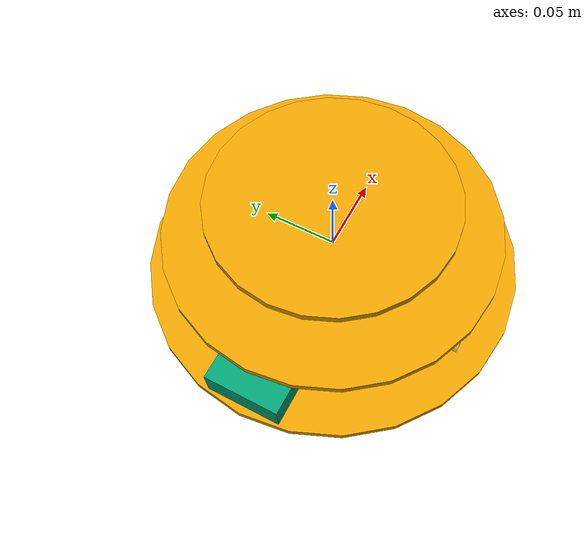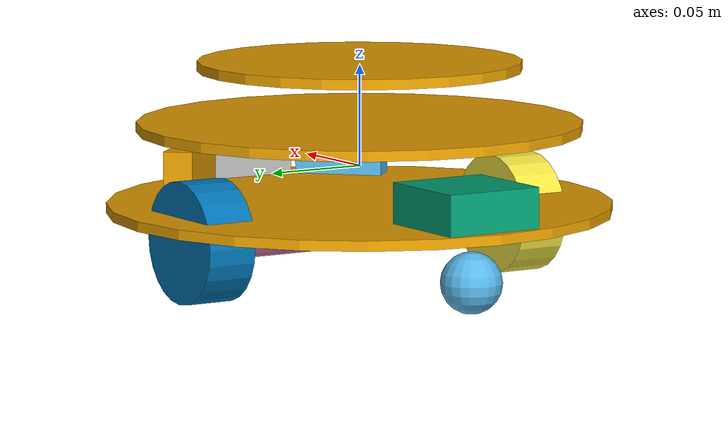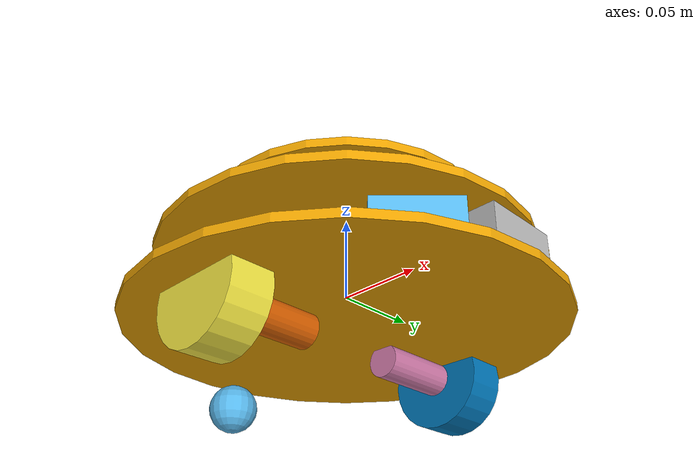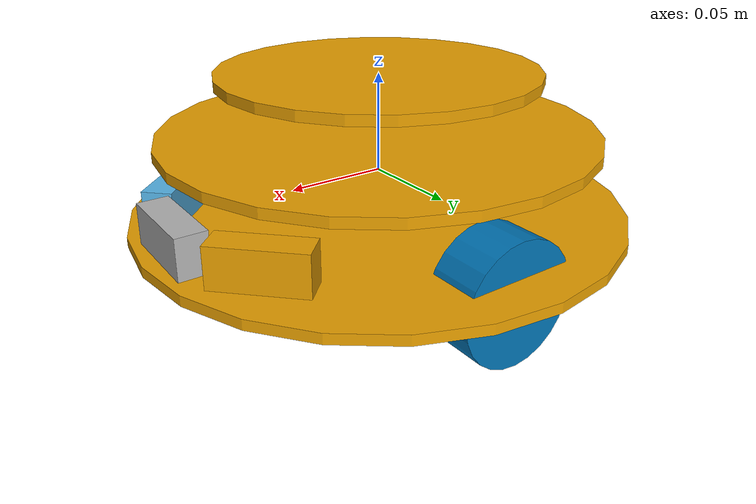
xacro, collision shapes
<?xml version="1.0" ?>

<robot name="r4e" xmlns:xacro="https://www.ros.org/wiki/xacro" >

  <xacro:include filename="$(find r4e_description)/urdf/materials.xacro" />
  <xacro:include filename="$(find r4e_description)/urdf/gazebo.xacro" />
  <xacro:include filename="$(find r4e_description)/urdf/macro.xacro" />

  <!-- Defining link chassis -->
  <link name="link_chassis">
    <!-- pose and inertial -->
    <pose>0 0 0.06 0 0 0</pose>

    <!-- Inertial properties -->
    <inertial>
      <mass value="0.5"/>
      <origin rpy="0 0 0" xyz="0 0 0"/>
      <xacro:cylinder_inertia mass="0.3" r="0.125" l="0.005" />
    </inertial>
    <!-- Collision properties -->
    <collision name="collision_chassis1">
      <origin rpy="0 0 0" xyz="0 0 -0.02"/>
      <geometry>
       <cylinder length="0.005" radius="0.125"/>
      </geometry>
    </collision>
    <!-- Visual properties -->
    <visual name="viasual_chassis1">
      <origin rpy="0 0 0" xyz="0 0 -0.02"/>
      <geometry>
        <mesh filename= "package://r4e_description/meshes/body_robot.dae/body.dae" scale ="1 1 1"/>
      </geometry>
    </visual>
    <collision name="collision_chassis2">
      <origin rpy="0 0 0" xyz="0 0 0.02"/>
      <geometry>
       <cylinder length="0.005" radius="0.11"/>
      </geometry>
    </collision>
    <collision name="collision_chassis3">
      <origin rpy="0 0 0" xyz="0 0 0.05"/>
      <geometry>
       <cylinder length="0.005" radius="0.08"/>
      </geometry>
    </collision>

  </link>

<link name="link_roller_ball">
    <pose> 0 0 0 0 0 0</pose>
    <inertial>
      <mass value="0.05"/>
      <origin rpy="0 0 0" xyz="0 0 0"/>
      <xacro:sphere_inertia mass="0.05" r="0.015"/>
    </inertial>
    <collision name="roller_ball_collision">
      <origin rpy=" 0 0 0" xyz="0 0 0"/>
      <geometry>
        <sphere radius="0.015"/>
      </geometry>
      <surface>
        <friction>
          <ode>
            <mu>0</mu>
            <mu2>0</mu2>
            <slip1>1.0</slip1>
            <slip2>1.0</slip2>
          </ode>
        </friction>
      </surface>
    </collision>
    <visual name="roller_ball_visual">
      <origin rpy=" 0 0 0" xyz="0.015 0 -0.005"/>
      <geometry>
        <mesh filename="package://r4e_description/meshes/roller.dae/roller.dae" scale="1 1 1"/>
      </geometry>
    </visual>
</link>

<!-- joint_roller center-->
   <joint name="joint_roller_ball" type="fixed">
       <origin rpy="0 0 0" xyz="-0.1 0 -0.044"/>
       <child link="link_roller_ball" />
       <parent link="link_chassis" />
    </joint>

<!--pin-->
  <link name="link_pin">
    <pose> 0 0 0 0 0 0</pose>
    <inertial>
      <mass value="0.6"/>
      <origin rpy="0 0 0" xyz="0 0 0"/>
     <xacro:box_inertia mass="0.6" w="0.05"  d="0.05" h="0.02"/>
    </inertial>
    <collision name="pin_collision">
      <origin rpy=" 0 0 0" xyz="0 0 0"/>
      <geometry>
        <box size="0.05 0.05 0.02"/>
      </geometry>
    </collision>
    <visual name="pin_visual">
      <origin rpy=" 0 0 0" xyz="0 0 0"/>
      <geometry>
        <box size="0.05 0.05 0.02"/>
      </geometry>
    </visual>
  </link>

<!-- joint_pin -->
   <joint name="joint_pin" type="fixed">
       <origin rpy="0 0 0" xyz="-0.095 0 -0.0075"/>
       <child link="link_pin" />
       <parent link="link_chassis" />
    </joint>

  <!--
    Adding driver (motors & wheels) to the robot
  -->
  <xacro:link_wheel name="link_right_wheel" />
  <xacro:link_wheel name="link_left_wheel" />
  <xacro:link_motor name="link_right_motor"/>
  <xacro:link_motor name="link_left_motor" />

  <xacro:joint_wheel name="joint_right_wheel"  child="link_right_wheel" parent="link_chassis"  origin_xyz="0 -0.09 -0.03"  />
  <xacro:joint_wheel name="joint_left_wheel"   child="link_left_wheel" parent="link_chassis"  origin_xyz="0 0.09 -0.03"  />
  <xacro:joint_motor name="joint_right_motor" child="link_right_motor" origin_xyz="0 -0.06 -0.03" />
  <xacro:joint_motor name="joint_left_motor" child="link_left_motor" origin_xyz="0 0.06 -0.03" />
  <!--
    Adding laser scan sensors to the robot
  -->
  <xacro:link_sonar name="link_sonar_center" />
  <xacro:link_sonar name="link_sonar_left" />
  <xacro:link_sonar name="link_sonar_right" />
  <!-- Joint sensor -->
  <xacro:joint_sonar name="joint_sonar_center" child="link_sonar_center" origin_rpy="0 0 0" origin_xyz="0.11 0 -0.0075" />
  <xacro:joint_sonar name="joint_sonar_left" child="link_sonar_left" origin_rpy="0 0 0.785398" origin_xyz="0.09 0.045 -0.0075" />
  <xacro:joint_sonar name="joint_sonar_right" child="link_sonar_right" origin_rpy="0 0 -0.785398" origin_xyz="0.09 -0.045 -0.0075" />

</robot>

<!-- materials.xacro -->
<!--
  We are splitting the xacro file into smaller files
-->
<robot name="r4e" xmlns:xacro="https://www.ros.org/wiki/xacro" >
  <!-- Define used colors -->
  <material name="black">
    <color rgba="0.0 0.0 0.0 1.0"/>
  </material>
  <material name="blue">
    <color rgba="0.203125 0.23828125 0.28515625 1.0"/>
  </material>
  <material name="green">
    <color rgba="0.0 0.8 0.0 1.0"/>
  </material>
  <material name="grey">
    <color rgba="0.2 0.2 0.2 1.0"/>
  </material>
  <material name="orange">
    <color rgba="1.0 0.423529411765 0.0392156862745 1.0"/>
  </material>
  <material name="brown">
    <color rgba="0.870588235294 0.811764705882 0.764705882353 1.0"/>
  </material>
  <material name="red">
    <color rgba="0.80078125 0.12890625 0.1328125 1.0"/>
  </material>
  <material name="white">
    <color rgba="1.0 1.0 1.0 1.0"/>
  </material>
</robot>

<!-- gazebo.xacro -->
<robot name="r4e" xmlns:xacro="https://www.ros.org/wiki/xacro" >
  <xacro:include filename="$(find r4e_description)/urdf/macro.xacro" />
  <!--
    Now we are ready to add control to our robot. We will add a new element called plugin to our xacro file. We will add a differential drive plugin to our robot. The new tag looks like follows:
  -->
  <gazebo>
    <plugin filename="libgazebo_ros_diff_drive.so" name="differential_drive_controller">
      <alwaysOn>true</alwaysOn>
      <updateRate>20</updateRate>
      <leftJoint>joint_left_wheel</leftJoint>
      <rightJoint>joint_right_wheel</rightJoint>
      <wheelSeparation>0.17</wheelSeparation>
      <wheelDiameter>0.06</wheelDiameter>
      <torque>0.1</torque>
      <commandTopic>cmd_vel</commandTopic>
      <odometryTopic>odom</odometryTopic>
      <odometryFrame>odom</odometryFrame>
      <robotBaseFrame>link_chassis</robotBaseFrame>
    </plugin>
  </gazebo>
  <xacro:plugin_sonar name_link="link_sonar_center" />
  <xacro:plugin_sonar name_link="link_sonar_left" />
  <xacro:plugin_sonar name_link="link_sonar_right" />

</robot>

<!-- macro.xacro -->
<!--
  we will use macros, which are like functions, to reduce the remaining code in r4e.xacro file.
-->
<robot xmlns:xacro="http://www.ros.org/wiki/xacro">
    <xacro:macro name="link_wheel" params="name">
        <link name="${name}">
            <inertial>
              <mass value="0.2"/>
              <origin rpy="0 1.5707 1.5707" xyz="0 0 0"/>
              <xacro:cylinder_inertia mass="0.2" r="0.03" l="0.025" />
            </inertial>
            <collision name="${name}_collision">
              <origin rpy="0 1.5707 1.5707" xyz="0 0 0"/>
              <geometry>
                <cylinder length="0.025" radius="0.03"/>
              </geometry>
            </collision>
            <visual name="${name}_visual">
              <origin rpy="0 1.5707 1.5707" xyz="0 0 0"/>
              <geometry>
                <mesh filename="package://r4e_description/meshes/wheel_.dae" scale="1 1 1"/>
              </geometry>
            </visual>
        </link>
    </xacro:macro>
    <!-- Motor-->
    <xacro:macro name="link_motor" params="name">
        <link name="${name}">.005
          <inertial>.005
            <mass value="0.3"/>.005
            <origin rpy="0 1.5707 1.5707" xyz="0 0 0"/>
            <xacro:cylinder_inertia mass="0.3" r="0.01" l="0.06" />
          </inertial>
          <collision name="${name}_collision">
            <origin rpy="0 1.5707 1.5707" xyz="0 0 0"/>
            <geometry>
                <cylinder length="0.06" radius="0.01"/>
            </geometry>
          </collision>
          <visual name="${name}_visual">
            <origin rpy="0 1.5707 1.5707" xyz="0 0 0"/>
            <geometry>
              <cylinder length="0.06" radius="0.01"/>
            </geometry>
          </visual>
        </link>
    </xacro:macro>
    <!-- joint link wheels-->
     <xacro:macro name="joint_wheel" params="name child parent origin_xyz">
      <joint name="${name}" type="continuous">
        <origin rpy="0 0 0" xyz="${origin_xyz}"/>
        <child link="${child}"/>
        <parent link="${parent}"/>
        <axis rpy="0 0 0" xyz="0 1 0"/>
        <limit effort="100" velocity="100"/>
        <joint_properties damping="0.5" friction="0.5"/>
      </joint>
    </xacro:macro>
<!-- joint link Motor-->
   <xacro:macro name="joint_motor" params="name child origin_xyz">
      <joint name="${name}" type="fixed">
        <origin rpy="0 0 0" xyz="${origin_xyz}"/>
        <child link="${child}"/>
        <parent link="link_chassis"/>
      </joint>
    </xacro:macro>

 <!-- inertia of the cylinder  -->
    <xacro:macro name="cylinder_inertia" params="mass r l">
      <inertia ixx="${mass*(3*r*r+l*l)/12}" ixy = "0" ixz = "0" iyy="${mass*(3*r*r+l*l)/12}" iyz = "0" izz="${mass*(r*r)/2}" /> <!--izz="${mass*(r*r)/2}" -->
    </xacro:macro>
<!-- inertia of sphere-->
    <xacro:macro name="sphere_inertia" params="mass r">
      <inertia ixx="${(2*mass*r*r)/5}" ixy = "0" ixz = "0" iyy="${(2*mass*r*r)/5}" iyz = "0" izz="${(2*mass*r*r)/5}" /> <!--izz="${-(2*mass*r*r)/3}"-->
    </xacro:macro>
<!--inertia of box-->
    <xacro:macro name="box_inertia" params="mass w d h">

      <inertia ixx="${mass*(h*h+w*w)/12}" ixy = "0" ixz = "0" iyy="${mass*(h*h+d*d)/12}" iyz = "0" izz="${mass*(w*w+d*d)/12}" /> <!--izz="${-mass*(h*h+w*w)/12}"-->
    </xacro:macro>
<!-- Link sensor -->
    <xacro:macro name="link_sonar" params="name">
        <link name="${name}">
          <collision name="${name}_collision">
            <origin rpy="0 0 0" xyz="0 0 0"/>
            <geometry>
              <box size="0.015 0.045 0.02"/>
            </geometry>
          </collision>
          <visual name="${name}_visual">
            <origin rpy="0 0 0" xyz="0 0 0"/>
            <geometry>
              <mesh filename="package://r4e_description/meshes/sonar.dae" scale="1 1 1"/>
            </geometry>
          </visual>
        </link>
    </xacro:macro>
    <!-- Joint link sensor -->
    <xacro:macro name="joint_sonar" params="name child origin_rpy origin_xyz">
      <joint name="${name}" type="fixed">
        <origin rpy="${origin_rpy}" xyz="${origin_xyz}"/>
        <child link="${child}"/>
        <parent link="link_chassis"/>
      </joint>
    </xacro:macro>
    <!-- Plugin Sonar -->
    <xacro:macro name="plugin_sonar" params="name_link">
      <gazebo reference="${name_link}">
        <sensor type="ray" name="sonar">
          <pose> 0 0 0 0 0 0 </pose>
          <visualize> true </visualize>
          <update_rate>9.3 </update_rate>
          <ray>
            <scan>
              <horizontal>
               <samples>1</samples>
               <resolution>1.0</resolution>
               <min_angle>-0.15</min_angle>
               <max_angle>0.15</max_angle>
              </horizontal>
            </scan>
            <range>
              <min>0.02</min>
              <max>2</max>
              <resolution>0.003</resolution>
            </range>
          </ray>
          <plugin filename="libgazebo_ros_range.so" name="gazebo_ros_range">
            <gaussianNoise>0.005</gaussianNoise>
            <alwaysOn>true</alwaysOn>
            <updateRate>9.3</updateRate>
            <topicName>/robot/sonar_sensor/${name_link}</topicName>
            <frameName>${name_link}</frameName>
            <fov>0.26</fov>
            <radiation>ultrasound</radiation>
            <fov>0.5</fov>
          </plugin>
        </sensor>
      </gazebo>
    </xacro:macro>
</robot>
